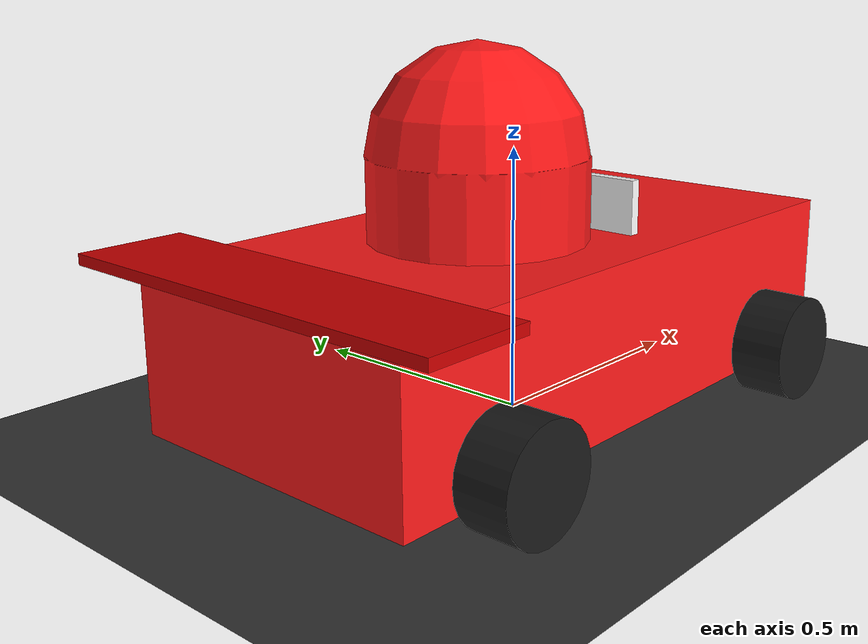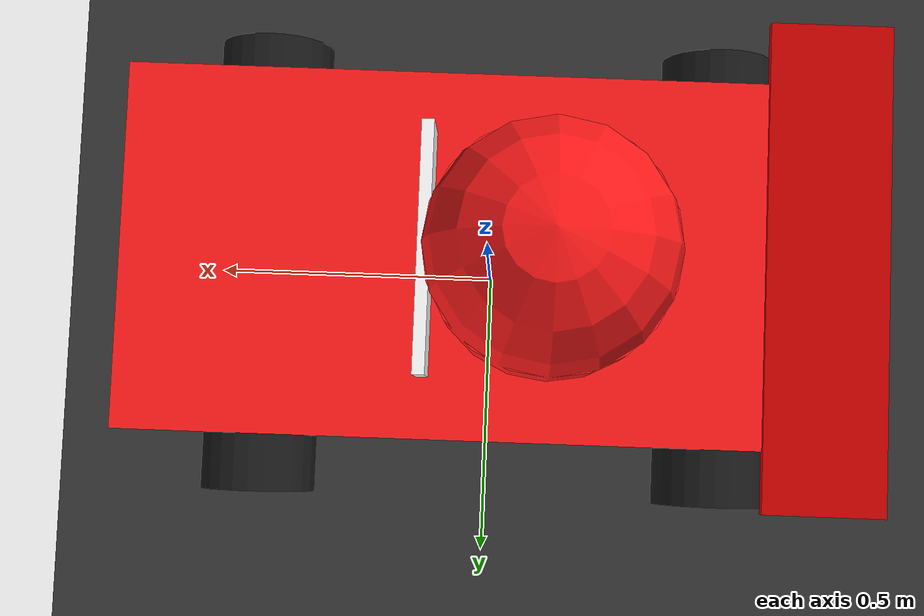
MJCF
<mujoco model="lightning_mcqueen">
    <compiler autolimits="true" meshdir="testdata/" />

    <option density="1.225" viscosity="1.8e-5">
        <flag energy="enable"/>
    </option>

    <worldbody>
        <light pos="0 0 3" dir="0 0 -1" diffuse="1 1 1"/>

        <geom name="floor" type="plane" size="10 10 0.1" rgba="0.2 0.2 0.2 1"/>

        <body name="v22_body" pos="0 0 0.2">
            <freejoint/>

            <geom name="fuselage" type="box" size="0.6 0.3 0.15" rgba="1 0.1 0.1 1"/>
            <geom type="capsule" pos="-0.1 0 0.15" size="0.2 0.15" rgba="1 0.1 0.1 1"/>

            <geom type="box" pos="0.1 0 0.2" size="0.01 0.2 0.05" rgba="1 1 1 1"/>

            <geom type="cylinder" pos="0.4 0.35 -0.1" size="0.1 0.05" quat="0.707 0.707 0 0" rgba="0.1 0.1 0.1 1"/>
            <geom type="cylinder" pos="0.4 -0.35 -0.1" size="0.1 0.05" quat="0.707 0.707 0 0" rgba="0.1 0.1 0.1 1"/>
            <geom type="cylinder" pos="-0.4 0.35 -0.1" size="0.1 0.05" quat="0.707 0.707 0 0" rgba="0.1 0.1 0.1 1"/>
            <geom type="cylinder" pos="-0.4 -0.35 -0.1" size="0.1 0.05" quat="0.707 0.707 0 0" rgba="0.1 0.1 0.1 1"/>

            <body name="spoiler_link" pos="-0.55 0 0.15">
                <joint name="tilt_joint" type="hinge" axis="0 1 0" range="-30 30"/>
                <geom name="wing_geom" type="box" size="0.1 0.4 0.01" rgba="0.8 0 0 1"/>
                <geom type="box" pos="0 0.2 -0.05" size="0.02 0.02 0.05" rgba="0.1 0.1 0.1 1"/>
                <geom type="box" pos="0 -0.2 -0.05" size="0.02 0.02 0.05" rgba="0.1 0.1 0.1 1"/>
            </body>
        </body>
    </worldbody>
</mujoco>
